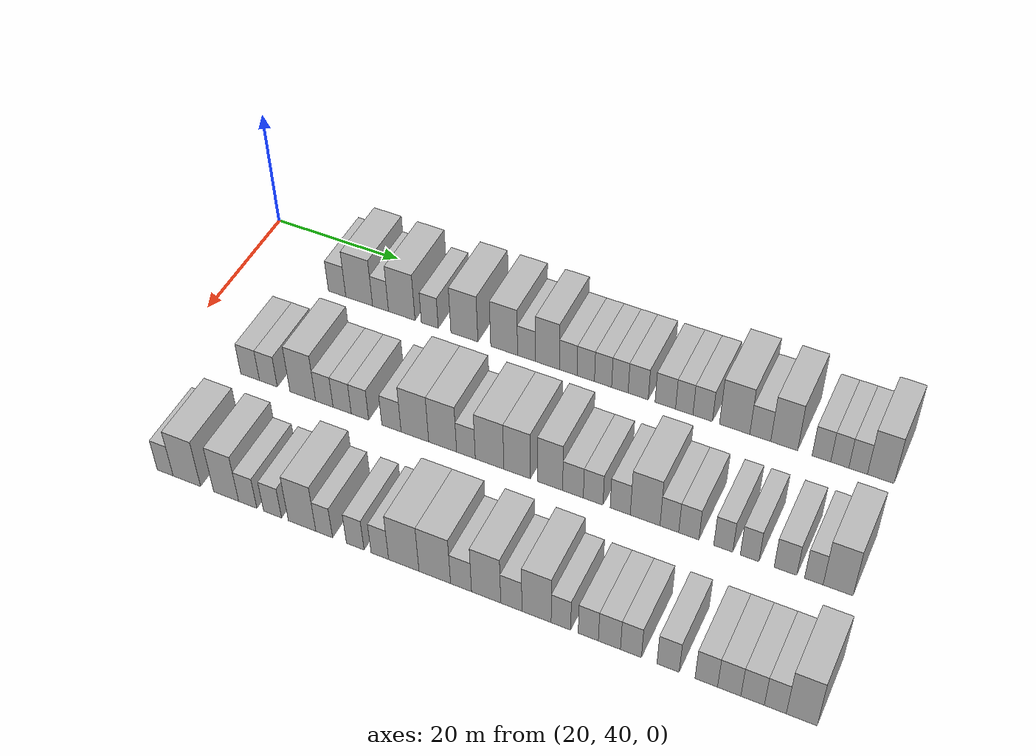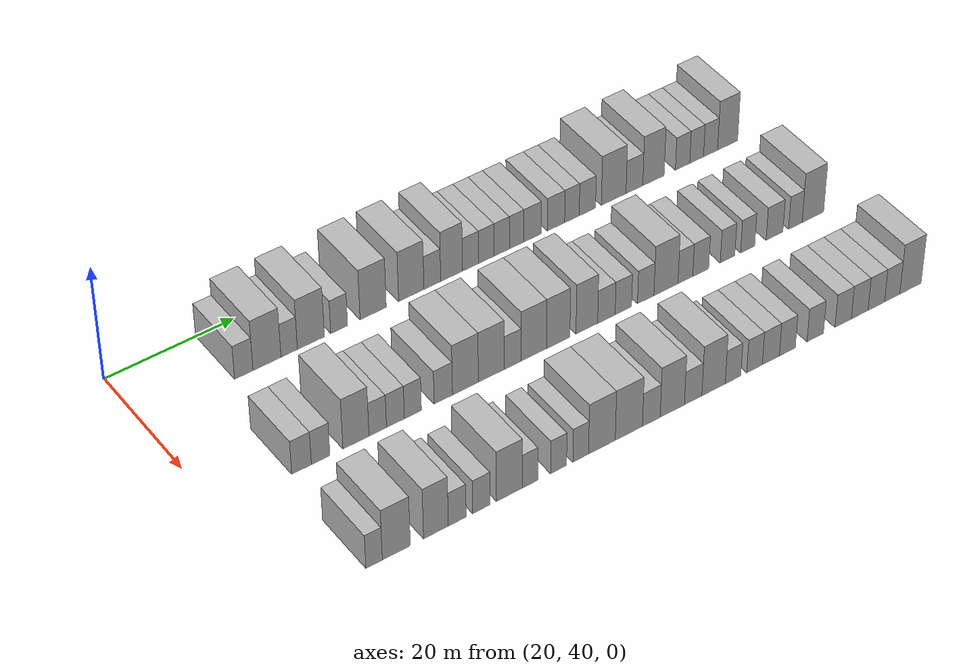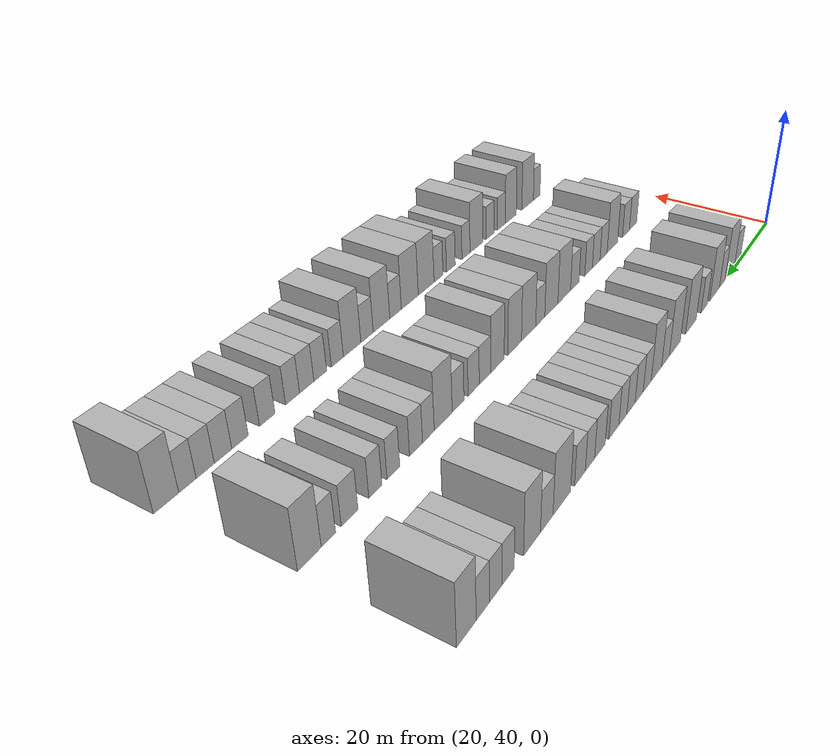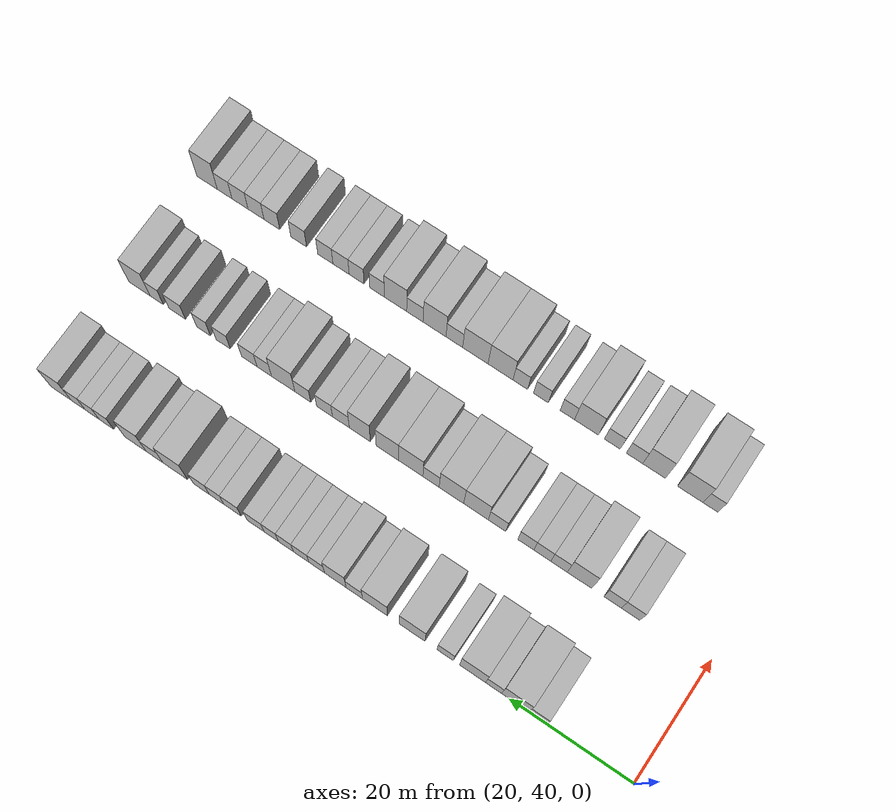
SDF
<sdf version="1.6">
 <world name="default">
  <model name="building_74">
   <static>1</static>
   <pose>25.0000 55.4740 0 0.000000 0.000000 0.000000</pose>
   <link name="link">
    <pose>0 0 3.00 0 0 0</pose>
    <collision name="collision"><geometry><box><size>10.0000 2.8598 6.0000</size></box></geometry></collision>
    <visual name="visual">
     <cast_shadows>0</cast_shadows>
     <geometry><box><size>10.0000 2.8598 6.0000</size></box></geometry>
     <material>
      <script>
       <uri>model://HANNAS_wall/materials/scripts</uri>
       <uri>model://HANNAS_wall/materials/textures</uri>
       <name>vrc/HANNAS_wall</name>
      </script>
     </material>
    </visual>
   </link>
  </model>
  <model name="building_75">
   <static>1</static>
   <pose>25.0000 59.0884 0 0.000000 0.000000 0.000000</pose>
   <link name="link">
    <pose>0 0 4.50 0 0 0</pose>
    <collision name="collision"><geometry><box><size>10.0000 4.3690 9.0000</size></box></geometry></collision>
    <visual name="visual">
     <cast_shadows>0</cast_shadows>
     <geometry><box><size>10.0000 4.3690 9.0000</size></box></geometry>
     <material>
      <script>
       <uri>model://HANNAS_wall/materials/scripts</uri>
       <uri>model://HANNAS_wall/materials/textures</uri>
       <name>vrc/HANNAS_wall</name>
      </script>
     </material>
    </visual>
   </link>
  </model>
  <model name="building_76">
   <static>1</static>
   <pose>25.0000 62.5649 0 0.000000 0.000000 0.000000</pose>
   <link name="link">
    <pose>0 0 3.00 0 0 0</pose>
    <collision name="collision"><geometry><box><size>10.0000 2.5840 6.0000</size></box></geometry></collision>
    <visual name="visual">
     <cast_shadows>0</cast_shadows>
     <geometry><box><size>10.0000 2.5840 6.0000</size></box></geometry>
     <material>
      <script>
       <uri>model://HANNAS_wall/materials/scripts</uri>
       <uri>model://HANNAS_wall/materials/textures</uri>
       <name>vrc/HANNAS_wall</name>
      </script>
     </material>
    </visual>
   </link>
  </model>
  <model name="building_77">
   <static>1</static>
   <pose>25.0000 65.9919 0 0.000000 0.000000 0.000000</pose>
   <link name="link">
    <pose>0 0 4.50 0 0 0</pose>
    <collision name="collision"><geometry><box><size>10.0000 4.2699 9.0000</size></box></geometry></collision>
    <visual name="visual">
     <cast_shadows>0</cast_shadows>
     <geometry><box><size>10.0000 4.2699 9.0000</size></box></geometry>
     <material>
      <script>
       <uri>model://HANNAS_wall/materials/scripts</uri>
       <uri>model://HANNAS_wall/materials/textures</uri>
       <name>vrc/HANNAS_wall</name>
      </script>
     </material>
    </visual>
   </link>
  </model>
  <model name="building_78">
   <static>1</static>
   <pose>25.0000 70.4706 0 0.000000 0.000000 0.000000</pose>
   <link name="link">
    <pose>0 0 3.00 0 0 0</pose>
    <collision name="collision"><geometry><box><size>10.0000 2.6875 6.0000</size></box></geometry></collision>
    <visual name="visual">
     <cast_shadows>0</cast_shadows>
     <geometry><box><size>10.0000 2.6875 6.0000</size></box></geometry>
     <material>
      <script>
       <uri>model://HANNAS_wall/materials/scripts</uri>
       <uri>model://HANNAS_wall/materials/textures</uri>
       <name>vrc/HANNAS_wall</name>
      </script>
     </material>
    </visual>
   </link>
  </model>
  <model name="building_79">
   <static>1</static>
   <pose>25.0000 75.9300 0 0.000000 0.000000 0.000000</pose>
   <link name="link">
    <pose>0 0 4.50 0 0 0</pose>
    <collision name="collision"><geometry><box><size>10.0000 4.2313 9.0000</size></box></geometry></collision>
    <visual name="visual">
     <cast_shadows>0</cast_shadows>
     <geometry><box><size>10.0000 4.2313 9.0000</size></box></geometry>
     <material>
      <script>
       <uri>model://HANNAS_wall/materials/scripts</uri>
       <uri>model://HANNAS_wall/materials/textures</uri>
       <name>vrc/HANNAS_wall</name>
      </script>
     </material>
    </visual>
   </link>
  </model>
  <model name="building_80">
   <static>1</static>
   <pose>25.0000 82.1156 0 0.000000 0.000000 0.000000</pose>
   <link name="link">
    <pose>0 0 4.50 0 0 0</pose>
    <collision name="collision"><geometry><box><size>10.0000 4.1399 9.0000</size></box></geometry></collision>
    <visual name="visual">
     <cast_shadows>0</cast_shadows>
     <geometry><box><size>10.0000 4.1399 9.0000</size></box></geometry>
     <material>
      <script>
       <uri>model://HANNAS_wall/materials/scripts</uri>
       <uri>model://HANNAS_wall/materials/textures</uri>
       <name>vrc/HANNAS_wall</name>
      </script>
     </material>
    </visual>
   </link>
  </model>
  <model name="building_81">
   <static>1</static>
   <pose>25.0000 85.5630 0 0.000000 0.000000 0.000000</pose>
   <link name="link">
    <pose>0 0 3.00 0 0 0</pose>
    <collision name="collision"><geometry><box><size>10.0000 2.7549 6.0000</size></box></geometry></collision>
    <visual name="visual">
     <cast_shadows>0</cast_shadows>
     <geometry><box><size>10.0000 2.7549 6.0000</size></box></geometry>
     <material>
      <script>
       <uri>model://HANNAS_wall/materials/scripts</uri>
       <uri>model://HANNAS_wall/materials/textures</uri>
       <name>vrc/HANNAS_wall</name>
      </script>
     </material>
    </visual>
   </link>
  </model>
  <model name="building_82">
   <static>1</static>
   <pose>25.0000 88.7493 0 0.000000 0.000000 0.000000</pose>
   <link name="link">
    <pose>0 0 4.50 0 0 0</pose>
    <collision name="collision"><geometry><box><size>10.0000 3.6176 9.0000</size></box></geometry></collision>
    <visual name="visual">
     <cast_shadows>0</cast_shadows>
     <geometry><box><size>10.0000 3.6176 9.0000</size></box></geometry>
     <material>
      <script>
       <uri>model://HANNAS_wall/materials/scripts</uri>
       <uri>model://HANNAS_wall/materials/textures</uri>
       <name>vrc/HANNAS_wall</name>
      </script>
     </material>
    </visual>
   </link>
  </model>
  <model name="building_83">
   <static>1</static>
   <pose>25.0000 91.8933 0 0.000000 0.000000 0.000000</pose>
   <link name="link">
    <pose>0 0 3.00 0 0 0</pose>
    <collision name="collision"><geometry><box><size>10.0000 2.6706 6.0000</size></box></geometry></collision>
    <visual name="visual">
     <cast_shadows>0</cast_shadows>
     <geometry><box><size>10.0000 2.6706 6.0000</size></box></geometry>
     <material>
      <script>
       <uri>model://HANNAS_wall/materials/scripts</uri>
       <uri>model://HANNAS_wall/materials/textures</uri>
       <name>vrc/HANNAS_wall</name>
      </script>
     </material>
    </visual>
   </link>
  </model>
  <model name="building_84">
   <static>1</static>
   <pose>25.0000 94.5356 0 0.000000 0.000000 0.000000</pose>
   <link name="link">
    <pose>0 0 3.00 0 0 0</pose>
    <collision name="collision"><geometry><box><size>10.0000 2.6140 6.0000</size></box></geometry></collision>
    <visual name="visual">
     <cast_shadows>0</cast_shadows>
     <geometry><box><size>10.0000 2.6140 6.0000</size></box></geometry>
     <material>
      <script>
       <uri>model://HANNAS_wall/materials/scripts</uri>
       <uri>model://HANNAS_wall/materials/textures</uri>
       <name>vrc/HANNAS_wall</name>
      </script>
     </material>
    </visual>
   </link>
  </model>
  <model name="building_85">
   <static>1</static>
   <pose>25.0000 97.1192 0 0.000000 0.000000 0.000000</pose>
   <link name="link">
    <pose>0 0 3.00 0 0 0</pose>
    <collision name="collision"><geometry><box><size>10.0000 2.5532 6.0000</size></box></geometry></collision>
    <visual name="visual">
     <cast_shadows>0</cast_shadows>
     <geometry><box><size>10.0000 2.5532 6.0000</size></box></geometry>
     <material>
      <script>
       <uri>model://HANNAS_wall/materials/scripts</uri>
       <uri>model://HANNAS_wall/materials/textures</uri>
       <name>vrc/HANNAS_wall</name>
      </script>
     </material>
    </visual>
   </link>
  </model>
  <model name="building_86">
   <static>1</static>
   <pose>25.0000 99.6179 0 0.000000 0.000000 0.000000</pose>
   <link name="link">
    <pose>0 0 3.00 0 0 0</pose>
    <collision name="collision"><geometry><box><size>10.0000 2.4443 6.0000</size></box></geometry></collision>
    <visual name="visual">
     <cast_shadows>0</cast_shadows>
     <geometry><box><size>10.0000 2.4443 6.0000</size></box></geometry>
     <material>
      <script>
       <uri>model://HANNAS_wall/materials/scripts</uri>
       <uri>model://HANNAS_wall/materials/textures</uri>
       <name>vrc/HANNAS_wall</name>
      </script>
     </material>
    </visual>
   </link>
  </model>
  <model name="building_87">
   <static>1</static>
   <pose>25.0000 102.3204 0 0.000000 0.000000 0.000000</pose>
   <link name="link">
    <pose>0 0 3.00 0 0 0</pose>
    <collision name="collision"><geometry><box><size>10.0000 2.9606 6.0000</size></box></geometry></collision>
    <visual name="visual">
     <cast_shadows>0</cast_shadows>
     <geometry><box><size>10.0000 2.9606 6.0000</size></box></geometry>
     <material>
      <script>
       <uri>model://HANNAS_wall/materials/scripts</uri>
       <uri>model://HANNAS_wall/materials/textures</uri>
       <name>vrc/HANNAS_wall</name>
      </script>
     </material>
    </visual>
   </link>
  </model>
  <model name="building_88">
   <static>1</static>
   <pose>25.0000 106.2878 0 0.000000 0.000000 0.000000</pose>
   <link name="link">
    <pose>0 0 3.00 0 0 0</pose>
    <collision name="collision"><geometry><box><size>10.0000 2.9742 6.0000</size></box></geometry></collision>
    <visual name="visual">
     <cast_shadows>0</cast_shadows>
     <geometry><box><size>10.0000 2.9742 6.0000</size></box></geometry>
     <material>
      <script>
       <uri>model://HANNAS_wall/materials/scripts</uri>
       <uri>model://HANNAS_wall/materials/textures</uri>
       <name>vrc/HANNAS_wall</name>
      </script>
     </material>
    </visual>
   </link>
  </model>
  <model name="building_89">
   <static>1</static>
   <pose>25.0000 109.0299 0 0.000000 0.000000 0.000000</pose>
   <link name="link">
    <pose>0 0 3.00 0 0 0</pose>
    <collision name="collision"><geometry><box><size>10.0000 2.5099 6.0000</size></box></geometry></collision>
    <visual name="visual">
     <cast_shadows>0</cast_shadows>
     <geometry><box><size>10.0000 2.5099 6.0000</size></box></geometry>
     <material>
      <script>
       <uri>model://HANNAS_wall/materials/scripts</uri>
       <uri>model://HANNAS_wall/materials/textures</uri>
       <name>vrc/HANNAS_wall</name>
      </script>
     </material>
    </visual>
   </link>
  </model>
  <model name="building_90">
   <static>1</static>
   <pose>25.0000 111.6919 0 0.000000 0.000000 0.000000</pose>
   <link name="link">
    <pose>0 0 3.00 0 0 0</pose>
    <collision name="collision"><geometry><box><size>10.0000 2.8143 6.0000</size></box></geometry></collision>
    <visual name="visual">
     <cast_shadows>0</cast_shadows>
     <geometry><box><size>10.0000 2.8143 6.0000</size></box></geometry>
     <material>
      <script>
       <uri>model://HANNAS_wall/materials/scripts</uri>
       <uri>model://HANNAS_wall/materials/textures</uri>
       <name>vrc/HANNAS_wall</name>
      </script>
     </material>
    </visual>
   </link>
  </model>
  <model name="building_91">
   <static>1</static>
   <pose>25.0000 116.2485 0 0.000000 0.000000 0.000000</pose>
   <link name="link">
    <pose>0 0 4.50 0 0 0</pose>
    <collision name="collision"><geometry><box><size>10.0000 4.2989 9.0000</size></box></geometry></collision>
    <visual name="visual">
     <cast_shadows>0</cast_shadows>
     <geometry><box><size>10.0000 4.2989 9.0000</size></box></geometry>
     <material>
      <script>
       <uri>model://HANNAS_wall/materials/scripts</uri>
       <uri>model://HANNAS_wall/materials/textures</uri>
       <name>vrc/HANNAS_wall</name>
      </script>
     </material>
    </visual>
   </link>
  </model>
  <model name="building_92">
   <static>1</static>
   <pose>25.0000 119.8705 0 0.000000 0.000000 0.000000</pose>
   <link name="link">
    <pose>0 0 3.00 0 0 0</pose>
    <collision name="collision"><geometry><box><size>10.0000 2.9450 6.0000</size></box></geometry></collision>
    <visual name="visual">
     <cast_shadows>0</cast_shadows>
     <geometry><box><size>10.0000 2.9450 6.0000</size></box></geometry>
     <material>
      <script>
       <uri>model://HANNAS_wall/materials/scripts</uri>
       <uri>model://HANNAS_wall/materials/textures</uri>
       <name>vrc/HANNAS_wall</name>
      </script>
     </material>
    </visual>
   </link>
  </model>
  <model name="building_93">
   <static>1</static>
   <pose>25.0000 123.2253 0 0.000000 0.000000 0.000000</pose>
   <link name="link">
    <pose>0 0 4.50 0 0 0</pose>
    <collision name="collision"><geometry><box><size>10.0000 3.7645 9.0000</size></box></geometry></collision>
    <visual name="visual">
     <cast_shadows>0</cast_shadows>
     <geometry><box><size>10.0000 3.7645 9.0000</size></box></geometry>
     <material>
      <script>
       <uri>model://HANNAS_wall/materials/scripts</uri>
       <uri>model://HANNAS_wall/materials/textures</uri>
       <name>vrc/HANNAS_wall</name>
      </script>
     </material>
    </visual>
   </link>
  </model>
  <model name="building_94">
   <static>1</static>
   <pose>25.0000 128.3895 0 0.000000 0.000000 0.000000</pose>
   <link name="link">
    <pose>0 0 3.00 0 0 0</pose>
    <collision name="collision"><geometry><box><size>10.0000 2.5640 6.0000</size></box></geometry></collision>
    <visual name="visual">
     <cast_shadows>0</cast_shadows>
     <geometry><box><size>10.0000 2.5640 6.0000</size></box></geometry>
     <material>
      <script>
       <uri>model://HANNAS_wall/materials/scripts</uri>
       <uri>model://HANNAS_wall/materials/textures</uri>
       <name>vrc/HANNAS_wall</name>
      </script>
     </material>
    </visual>
   </link>
  </model>
  <model name="building_95">
   <static>1</static>
   <pose>25.0000 130.9054 0 0.000000 0.000000 0.000000</pose>
   <link name="link">
    <pose>0 0 3.00 0 0 0</pose>
    <collision name="collision"><geometry><box><size>10.0000 2.4679 6.0000</size></box></geometry></collision>
    <visual name="visual">
     <cast_shadows>0</cast_shadows>
     <geometry><box><size>10.0000 2.4679 6.0000</size></box></geometry>
     <material>
      <script>
       <uri>model://HANNAS_wall/materials/scripts</uri>
       <uri>model://HANNAS_wall/materials/textures</uri>
       <name>vrc/HANNAS_wall</name>
      </script>
     </material>
    </visual>
   </link>
  </model>
  <model name="building_96">
   <static>1</static>
   <pose>25.0000 133.4036 0 0.000000 0.000000 0.000000</pose>
   <link name="link">
    <pose>0 0 3.00 0 0 0</pose>
    <collision name="collision"><geometry><box><size>10.0000 2.5285 6.0000</size></box></geometry></collision>
    <visual name="visual">
     <cast_shadows>0</cast_shadows>
     <geometry><box><size>10.0000 2.5285 6.0000</size></box></geometry>
     <material>
      <script>
       <uri>model://HANNAS_wall/materials/scripts</uri>
       <uri>model://HANNAS_wall/materials/textures</uri>
       <name>vrc/HANNAS_wall</name>
      </script>
     </material>
    </visual>
   </link>
  </model>
  <model name="building_97">
   <static>1</static>
   <pose>25.0000 136.4704 0 0.000000 0.000000 0.000000</pose>
   <link name="link">
    <pose>0 0 4.50 0 0 0</pose>
    <collision name="collision"><geometry><box><size>10.0000 3.6051 9.0000</size></box></geometry></collision>
    <visual name="visual">
     <cast_shadows>0</cast_shadows>
     <geometry><box><size>10.0000 3.6051 9.0000</size></box></geometry>
     <material>
      <script>
       <uri>model://HANNAS_wall/materials/scripts</uri>
       <uri>model://HANNAS_wall/materials/textures</uri>
       <name>vrc/HANNAS_wall</name>
      </script>
     </material>
    </visual>
   </link>
  </model>
  <model name="building_199">
   <static>1</static>
   <pose>44.0000 52.4858 0 0.000000 0.000000 0.000000</pose>
   <link name="link">
    <pose>0 0 3.00 0 0 0</pose>
    <collision name="collision"><geometry><box><size>10.0000 2.9919 6.0000</size></box></geometry></collision>
    <visual name="visual">
     <cast_shadows>0</cast_shadows>
     <geometry><box><size>10.0000 2.9919 6.0000</size></box></geometry>
     <material>
      <script>
       <uri>model://HANNAS_wall/materials/scripts</uri>
       <uri>model://HANNAS_wall/materials/textures</uri>
       <name>vrc/HANNAS_wall</name>
      </script>
     </material>
    </visual>
   </link>
  </model>
  <model name="building_200">
   <static>1</static>
   <pose>44.0000 55.3976 0 0.000000 0.000000 0.000000</pose>
   <link name="link">
    <pose>0 0 3.00 0 0 0</pose>
    <collision name="collision"><geometry><box><size>10.0000 2.8318 6.0000</size></box></geometry></collision>
    <visual name="visual">
     <cast_shadows>0</cast_shadows>
     <geometry><box><size>10.0000 2.8318 6.0000</size></box></geometry>
     <material>
      <script>
       <uri>model://HANNAS_wall/materials/scripts</uri>
       <uri>model://HANNAS_wall/materials/textures</uri>
       <name>vrc/HANNAS_wall</name>
      </script>
     </material>
    </visual>
   </link>
  </model>
  <model name="building_201">
   <static>1</static>
   <pose>44.0000 60.8231 0 0.000000 0.000000 0.000000</pose>
   <link name="link">
    <pose>0 0 4.50 0 0 0</pose>
    <collision name="collision"><geometry><box><size>10.0000 4.0193 9.0000</size></box></geometry></collision>
    <visual name="visual">
     <cast_shadows>0</cast_shadows>
     <geometry><box><size>10.0000 4.0193 9.0000</size></box></geometry>
     <material>
      <script>
       <uri>model://HANNAS_wall/materials/scripts</uri>
       <uri>model://HANNAS_wall/materials/textures</uri>
       <name>vrc/HANNAS_wall</name>
      </script>
     </material>
    </visual>
   </link>
  </model>
  <model name="building_202">
   <static>1</static>
   <pose>44.0000 64.1893 0 0.000000 0.000000 0.000000</pose>
   <link name="link">
    <pose>0 0 3.00 0 0 0</pose>
    <collision name="collision"><geometry><box><size>10.0000 2.7131 6.0000</size></box></geometry></collision>
    <visual name="visual">
     <cast_shadows>0</cast_shadows>
     <geometry><box><size>10.0000 2.7131 6.0000</size></box></geometry>
     <material>
      <script>
       <uri>model://HANNAS_wall/materials/scripts</uri>
       <uri>model://HANNAS_wall/materials/textures</uri>
       <name>vrc/HANNAS_wall</name>
      </script>
     </material>
    </visual>
   </link>
  </model>
  <model name="building_203">
   <static>1</static>
   <pose>44.0000 66.9496 0 0.000000 0.000000 0.000000</pose>
   <link name="link">
    <pose>0 0 3.00 0 0 0</pose>
    <collision name="collision"><geometry><box><size>10.0000 2.8075 6.0000</size></box></geometry></collision>
    <visual name="visual">
     <cast_shadows>0</cast_shadows>
     <geometry><box><size>10.0000 2.8075 6.0000</size></box></geometry>
     <material>
      <script>
       <uri>model://HANNAS_wall/materials/scripts</uri>
       <uri>model://HANNAS_wall/materials/textures</uri>
       <name>vrc/HANNAS_wall</name>
      </script>
     </material>
    </visual>
   </link>
  </model>
  <model name="building_204">
   <static>1</static>
   <pose>44.0000 69.6875 0 0.000000 0.000000 0.000000</pose>
   <link name="link">
    <pose>0 0 3.00 0 0 0</pose>
    <collision name="collision"><geometry><box><size>10.0000 2.6684 6.0000</size></box></geometry></collision>
    <visual name="visual">
     <cast_shadows>0</cast_shadows>
     <geometry><box><size>10.0000 2.6684 6.0000</size></box></geometry>
     <material>
      <script>
       <uri>model://HANNAS_wall/materials/scripts</uri>
       <uri>model://HANNAS_wall/materials/textures</uri>
       <name>vrc/HANNAS_wall</name>
      </script>
     </material>
    </visual>
   </link>
  </model>
  <model name="building_205">
   <static>1</static>
   <pose>44.0000 74.4806 0 0.000000 0.000000 0.000000</pose>
   <link name="link">
    <pose>0 0 3.00 0 0 0</pose>
    <collision name="collision"><geometry><box><size>10.0000 2.9177 6.0000</size></box></geometry></collision>
    <visual name="visual">
     <cast_shadows>0</cast_shadows>
     <geometry><box><size>10.0000 2.9177 6.0000</size></box></geometry>
     <material>
      <script>
       <uri>model://HANNAS_wall/materials/scripts</uri>
       <uri>model://HANNAS_wall/materials/textures</uri>
       <name>vrc/HANNAS_wall</name>
      </script>
     </material>
    </visual>
   </link>
  </model>
  <model name="building_206">
   <static>1</static>
   <pose>44.0000 78.0113 0 0.000000 0.000000 0.000000</pose>
   <link name="link">
    <pose>0 0 4.50 0 0 0</pose>
    <collision name="collision"><geometry><box><size>10.0000 4.1437 9.0000</size></box></geometry></collision>
    <visual name="visual">
     <cast_shadows>0</cast_shadows>
     <geometry><box><size>10.0000 4.1437 9.0000</size></box></geometry>
     <material>
      <script>
       <uri>model://HANNAS_wall/materials/scripts</uri>
       <uri>model://HANNAS_wall/materials/textures</uri>
       <name>vrc/HANNAS_wall</name>
      </script>
     </material>
    </visual>
   </link>
  </model>
  <model name="building_207">
   <static>1</static>
   <pose>44.0000 82.1556 0 0.000000 0.000000 0.000000</pose>
   <link name="link">
    <pose>0 0 4.50 0 0 0</pose>
    <collision name="collision"><geometry><box><size>10.0000 4.1450 9.0000</size></box></geometry></collision>
    <visual name="visual">
     <cast_shadows>0</cast_shadows>
     <geometry><box><size>10.0000 4.1450 9.0000</size></box></geometry>
     <material>
      <script>
       <uri>model://HANNAS_wall/materials/scripts</uri>
       <uri>model://HANNAS_wall/materials/textures</uri>
       <name>vrc/HANNAS_wall</name>
      </script>
     </material>
    </visual>
   </link>
  </model>
  <model name="building_208">
   <static>1</static>
   <pose>44.0000 85.5999 0 0.000000 0.000000 0.000000</pose>
   <link name="link">
    <pose>0 0 3.00 0 0 0</pose>
    <collision name="collision"><geometry><box><size>10.0000 2.7435 6.0000</size></box></geometry></collision>
    <visual name="visual">
     <cast_shadows>0</cast_shadows>
     <geometry><box><size>10.0000 2.7435 6.0000</size></box></geometry>
     <material>
      <script>
       <uri>model://HANNAS_wall/materials/scripts</uri>
       <uri>model://HANNAS_wall/materials/textures</uri>
       <name>vrc/HANNAS_wall</name>
      </script>
     </material>
    </visual>
   </link>
  </model>
  <model name="building_209">
   <static>1</static>
   <pose>44.0000 89.0568 0 0.000000 0.000000 0.000000</pose>
   <link name="link">
    <pose>0 0 4.50 0 0 0</pose>
    <collision name="collision"><geometry><box><size>10.0000 4.1704 9.0000</size></box></geometry></collision>
    <visual name="visual">
     <cast_shadows>0</cast_shadows>
     <geometry><box><size>10.0000 4.1704 9.0000</size></box></geometry>
     <material>
      <script>
       <uri>model://HANNAS_wall/materials/scripts</uri>
       <uri>model://HANNAS_wall/materials/textures</uri>
       <name>vrc/HANNAS_wall</name>
      </script>
     </material>
    </visual>
   </link>
  </model>
  <model name="building_210">
   <static>1</static>
   <pose>44.0000 93.0528 0 0.000000 0.000000 0.000000</pose>
   <link name="link">
    <pose>0 0 4.50 0 0 0</pose>
    <collision name="collision"><geometry><box><size>10.0000 3.8215 9.0000</size></box></geometry></collision>
    <visual name="visual">
     <cast_shadows>0</cast_shadows>
     <geometry><box><size>10.0000 3.8215 9.0000</size></box></geometry>
     <material>
      <script>
       <uri>model://HANNAS_wall/materials/scripts</uri>
       <uri>model://HANNAS_wall/materials/textures</uri>
       <name>vrc/HANNAS_wall</name>
      </script>
     </material>
    </visual>
   </link>
  </model>
  <model name="building_211">
   <static>1</static>
   <pose>44.0000 97.7664 0 0.000000 0.000000 0.000000</pose>
   <link name="link">
    <pose>0 0 4.50 0 0 0</pose>
    <collision name="collision"><geometry><box><size>10.0000 3.6059 9.0000</size></box></geometry></collision>
    <visual name="visual">
     <cast_shadows>0</cast_shadows>
     <geometry><box><size>10.0000 3.6059 9.0000</size></box></geometry>
     <material>
      <script>
       <uri>model://HANNAS_wall/materials/scripts</uri>
       <uri>model://HANNAS_wall/materials/textures</uri>
       <name>vrc/HANNAS_wall</name>
      </script>
     </material>
    </visual>
   </link>
  </model>
  <model name="building_212">
   <static>1</static>
   <pose>44.0000 101.0314 0 0.000000 0.000000 0.000000</pose>
   <link name="link">
    <pose>0 0 3.00 0 0 0</pose>
    <collision name="collision"><geometry><box><size>10.0000 2.9241 6.0000</size></box></geometry></collision>
    <visual name="visual">
     <cast_shadows>0</cast_shadows>
     <geometry><box><size>10.0000 2.9241 6.0000</size></box></geometry>
     <material>
      <script>
       <uri>model://HANNAS_wall/materials/scripts</uri>
       <uri>model://HANNAS_wall/materials/textures</uri>
       <name>vrc/HANNAS_wall</name>
      </script>
     </material>
    </visual>
   </link>
  </model>
  <model name="building_213">
   <static>1</static>
   <pose>44.0000 103.8735 0 0.000000 0.000000 0.000000</pose>
   <link name="link">
    <pose>0 0 3.00 0 0 0</pose>
    <collision name="collision"><geometry><box><size>10.0000 2.7602 6.0000</size></box></geometry></collision>
    <visual name="visual">
     <cast_shadows>0</cast_shadows>
     <geometry><box><size>10.0000 2.7602 6.0000</size></box></geometry>
     <material>
      <script>
       <uri>model://HANNAS_wall/materials/scripts</uri>
       <uri>model://HANNAS_wall/materials/textures</uri>
       <name>vrc/HANNAS_wall</name>
      </script>
     </material>
    </visual>
   </link>
  </model>
  <model name="building_214">
   <static>1</static>
   <pose>44.0000 107.6465 0 0.000000 0.000000 0.000000</pose>
   <link name="link">
    <pose>0 0 3.00 0 0 0</pose>
    <collision name="collision"><geometry><box><size>10.0000 2.7858 6.0000</size></box></geometry></collision>
    <visual name="visual">
     <cast_shadows>0</cast_shadows>
     <geometry><box><size>10.0000 2.7858 6.0000</size></box></geometry>
     <material>
      <script>
       <uri>model://HANNAS_wall/materials/scripts</uri>
       <uri>model://HANNAS_wall/materials/textures</uri>
       <name>vrc/HANNAS_wall</name>
      </script>
     </material>
    </visual>
   </link>
  </model>
  <model name="building_215">
   <static>1</static>
   <pose>44.0000 111.0881 0 0.000000 0.000000 0.000000</pose>
   <link name="link">
    <pose>0 0 4.50 0 0 0</pose>
    <collision name="collision"><geometry><box><size>10.0000 4.0975 9.0000</size></box></geometry></collision>
    <visual name="visual">
     <cast_shadows>0</cast_shadows>
     <geometry><box><size>10.0000 4.0975 9.0000</size></box></geometry>
     <material>
      <script>
       <uri>model://HANNAS_wall/materials/scripts</uri>
       <uri>model://HANNAS_wall/materials/textures</uri>
       <name>vrc/HANNAS_wall</name>
      </script>
     </material>
    </visual>
   </link>
  </model>
  <model name="building_216">
   <static>1</static>
   <pose>44.0000 114.4118 0 0.000000 0.000000 0.000000</pose>
   <link name="link">
    <pose>0 0 3.00 0 0 0</pose>
    <collision name="collision"><geometry><box><size>10.0000 2.5498 6.0000</size></box></geometry></collision>
    <visual name="visual">
     <cast_shadows>0</cast_shadows>
     <geometry><box><size>10.0000 2.5498 6.0000</size></box></geometry>
     <material>
      <script>
       <uri>model://HANNAS_wall/materials/scripts</uri>
       <uri>model://HANNAS_wall/materials/textures</uri>
       <name>vrc/HANNAS_wall</name>
      </script>
     </material>
    </visual>
   </link>
  </model>
  <model name="building_217">
   <static>1</static>
   <pose>44.0000 117.0549 0 0.000000 0.000000 0.000000</pose>
   <link name="link">
    <pose>0 0 3.00 0 0 0</pose>
    <collision name="collision"><geometry><box><size>10.0000 2.7363 6.0000</size></box></geometry></collision>
    <visual name="visual">
     <cast_shadows>0</cast_shadows>
     <geometry><box><size>10.0000 2.7363 6.0000</size></box></geometry>
     <material>
      <script>
       <uri>model://HANNAS_wall/materials/scripts</uri>
       <uri>model://HANNAS_wall/materials/textures</uri>
       <name>vrc/HANNAS_wall</name>
      </script>
     </material>
    </visual>
   </link>
  </model>
  <model name="building_218">
   <static>1</static>
   <pose>44.0000 121.6931 0 0.000000 0.000000 0.000000</pose>
   <link name="link">
    <pose>0 0 3.00 0 0 0</pose>
    <collision name="collision"><geometry><box><size>10.0000 2.5401 6.0000</size></box></geometry></collision>
    <visual name="visual">
     <cast_shadows>0</cast_shadows>
     <geometry><box><size>10.0000 2.5401 6.0000</size></box></geometry>
     <material>
      <script>
       <uri>model://HANNAS_wall/materials/scripts</uri>
       <uri>model://HANNAS_wall/materials/textures</uri>
       <name>vrc/HANNAS_wall</name>
      </script>
     </material>
    </visual>
   </link>
  </model>
  <model name="building_219">
   <static>1</static>
   <pose>44.0000 125.2019 0 0.000000 0.000000 0.000000</pose>
   <link name="link">
    <pose>0 0 3.00 0 0 0</pose>
    <collision name="collision"><geometry><box><size>10.0000 2.4775 6.0000</size></box></geometry></collision>
    <visual name="visual">
     <cast_shadows>0</cast_shadows>
     <geometry><box><size>10.0000 2.4775 6.0000</size></box></geometry>
     <material>
      <script>
       <uri>model://HANNAS_wall/materials/scripts</uri>
       <uri>model://HANNAS_wall/materials/textures</uri>
       <name>vrc/HANNAS_wall</name>
      </script>
     </material>
    </visual>
   </link>
  </model>
  <model name="building_220">
   <static>1</static>
   <pose>44.0000 129.9270 0 0.000000 0.000000 0.000000</pose>
   <link name="link">
    <pose>0 0 3.00 0 0 0</pose>
    <collision name="collision"><geometry><box><size>10.0000 2.9727 6.0000</size></box></geometry></collision>
    <visual name="visual">
     <cast_shadows>0</cast_shadows>
     <geometry><box><size>10.0000 2.9727 6.0000</size></box></geometry>
     <material>
      <script>
       <uri>model://HANNAS_wall/materials/scripts</uri>
       <uri>model://HANNAS_wall/materials/textures</uri>
       <name>vrc/HANNAS_wall</name>
      </script>
     </material>
    </visual>
   </link>
  </model>
  <model name="building_221">
   <static>1</static>
   <pose>44.0000 133.6176 0 0.000000 0.000000 0.000000</pose>
   <link name="link">
    <pose>0 0 3.00 0 0 0</pose>
    <collision name="collision"><geometry><box><size>10.0000 2.4084 6.0000</size></box></geometry></collision>
    <visual name="visual">
     <cast_shadows>0</cast_shadows>
     <geometry><box><size>10.0000 2.4084 6.0000</size></box></geometry>
     <material>
      <script>
       <uri>model://HANNAS_wall/materials/scripts</uri>
       <uri>model://HANNAS_wall/materials/textures</uri>
       <name>vrc/HANNAS_wall</name>
      </script>
     </material>
    </visual>
   </link>
  </model>
  <model name="building_222">
   <static>1</static>
   <pose>44.0000 136.7472 0 0.000000 0.000000 0.000000</pose>
   <link name="link">
    <pose>0 0 4.50 0 0 0</pose>
    <collision name="collision"><geometry><box><size>10.0000 3.8507 9.0000</size></box></geometry></collision>
    <visual name="visual">
     <cast_shadows>0</cast_shadows>
     <geometry><box><size>10.0000 3.8507 9.0000</size></box></geometry>
     <material>
      <script>
       <uri>model://HANNAS_wall/materials/scripts</uri>
       <uri>model://HANNAS_wall/materials/textures</uri>
       <name>vrc/HANNAS_wall</name>
      </script>
     </material>
    </visual>
   </link>
  </model>
  <model name="building_318">
   <static>1</static>
   <pose>63.0000 51.1699 0 0.000000 0.000000 0.000000</pose>
   <link name="link">
    <pose>0 0 3.00 0 0 0</pose>
    <collision name="collision"><geometry><box><size>10.0000 2.4506 6.0000</size></box></geometry></collision>
    <visual name="visual">
     <cast_shadows>0</cast_shadows>
     <geometry><box><size>10.0000 2.4506 6.0000</size></box></geometry>
     <material>
      <script>
       <uri>model://HANNAS_wall/materials/scripts</uri>
       <uri>model://HANNAS_wall/materials/textures</uri>
       <name>vrc/HANNAS_wall</name>
      </script>
     </material>
    </visual>
   </link>
  </model>
  <model name="building_319">
   <static>1</static>
   <pose>63.0000 54.4951 0 0.000000 0.000000 0.000000</pose>
   <link name="link">
    <pose>0 0 4.50 0 0 0</pose>
    <collision name="collision"><geometry><box><size>10.0000 4.1999 9.0000</size></box></geometry></collision>
    <visual name="visual">
     <cast_shadows>0</cast_shadows>
     <geometry><box><size>10.0000 4.1999 9.0000</size></box></geometry>
     <material>
      <script>
       <uri>model://HANNAS_wall/materials/scripts</uri>
       <uri>model://HANNAS_wall/materials/textures</uri>
       <name>vrc/HANNAS_wall</name>
      </script>
     </material>
    </visual>
   </link>
  </model>
  <model name="building_320">
   <static>1</static>
   <pose>63.0000 60.4772 0 0.000000 0.000000 0.000000</pose>
   <link name="link">
    <pose>0 0 4.50 0 0 0</pose>
    <collision name="collision"><geometry><box><size>10.0000 3.7643 9.0000</size></box></geometry></collision>
    <visual name="visual">
     <cast_shadows>0</cast_shadows>
     <geometry><box><size>10.0000 3.7643 9.0000</size></box></geometry>
     <material>
      <script>
       <uri>model://HANNAS_wall/materials/scripts</uri>
       <uri>model://HANNAS_wall/materials/textures</uri>
       <name>vrc/HANNAS_wall</name>
      </script>
     </material>
    </visual>
   </link>
  </model>
  <model name="building_321">
   <static>1</static>
   <pose>63.0000 63.7219 0 0.000000 0.000000 0.000000</pose>
   <link name="link">
    <pose>0 0 3.00 0 0 0</pose>
    <collision name="collision"><geometry><box><size>10.0000 2.7251 6.0000</size></box></geometry></collision>
    <visual name="visual">
     <cast_shadows>0</cast_shadows>
     <geometry><box><size>10.0000 2.7251 6.0000</size></box></geometry>
     <material>
      <script>
       <uri>model://HANNAS_wall/materials/scripts</uri>
       <uri>model://HANNAS_wall/materials/textures</uri>
       <name>vrc/HANNAS_wall</name>
      </script>
     </material>
    </visual>
   </link>
  </model>
  <model name="building_322">
   <static>1</static>
   <pose>63.0000 67.4157 0 0.000000 0.000000 0.000000</pose>
   <link name="link">
    <pose>0 0 3.00 0 0 0</pose>
    <collision name="collision"><geometry><box><size>10.0000 2.6626 6.0000</size></box></geometry></collision>
    <visual name="visual">
     <cast_shadows>0</cast_shadows>
     <geometry><box><size>10.0000 2.6626 6.0000</size></box></geometry>
     <material>
      <script>
       <uri>model://HANNAS_wall/materials/scripts</uri>
       <uri>model://HANNAS_wall/materials/textures</uri>
       <name>vrc/HANNAS_wall</name>
      </script>
     </material>
    </visual>
   </link>
  </model>
  <model name="building_323">
   <static>1</static>
   <pose>63.0000 71.7607 0 0.000000 0.000000 0.000000</pose>
   <link name="link">
    <pose>0 0 4.50 0 0 0</pose>
    <collision name="collision"><geometry><box><size>10.0000 4.0275 9.0000</size></box></geometry></collision>
    <visual name="visual">
     <cast_shadows>0</cast_shadows>
     <geometry><box><size>10.0000 4.0275 9.0000</size></box></geometry>
     <material>
      <script>
       <uri>model://HANNAS_wall/materials/scripts</uri>
       <uri>model://HANNAS_wall/materials/textures</uri>
       <name>vrc/HANNAS_wall</name>
      </script>
     </material>
    </visual>
   </link>
  </model>
  <model name="building_324">
   <static>1</static>
   <pose>63.0000 74.9885 0 0.000000 0.000000 0.000000</pose>
   <link name="link">
    <pose>0 0 3.00 0 0 0</pose>
    <collision name="collision"><geometry><box><size>10.0000 2.4280 6.0000</size></box></geometry></collision>
    <visual name="visual">
     <cast_shadows>0</cast_shadows>
     <geometry><box><size>10.0000 2.4280 6.0000</size></box></geometry>
     <material>
      <script>
       <uri>model://HANNAS_wall/materials/scripts</uri>
       <uri>model://HANNAS_wall/materials/textures</uri>
       <name>vrc/HANNAS_wall</name>
      </script>
     </material>
    </visual>
   </link>
  </model>
  <model name="building_325">
   <static>1</static>
   <pose>63.0000 79.4685 0 0.000000 0.000000 0.000000</pose>
   <link name="link">
    <pose>0 0 3.00 0 0 0</pose>
    <collision name="collision"><geometry><box><size>10.0000 2.5320 6.0000</size></box></geometry></collision>
    <visual name="visual">
     <cast_shadows>0</cast_shadows>
     <geometry><box><size>10.0000 2.5320 6.0000</size></box></geometry>
     <material>
      <script>
       <uri>model://HANNAS_wall/materials/scripts</uri>
       <uri>model://HANNAS_wall/materials/textures</uri>
       <name>vrc/HANNAS_wall</name>
      </script>
     </material>
    </visual>
   </link>
  </model>
  <model name="building_326">
   <static>1</static>
   <pose>63.0000 82.9801 0 0.000000 0.000000 0.000000</pose>
   <link name="link">
    <pose>0 0 3.00 0 0 0</pose>
    <collision name="collision"><geometry><box><size>10.0000 2.4911 6.0000</size></box></geometry></collision>
    <visual name="visual">
     <cast_shadows>0</cast_shadows>
     <geometry><box><size>10.0000 2.4911 6.0000</size></box></geometry>
     <material>
      <script>
       <uri>model://HANNAS_wall/materials/scripts</uri>
       <uri>model://HANNAS_wall/materials/textures</uri>
       <name>vrc/HANNAS_wall</name>
      </script>
     </material>
    </visual>
   </link>
  </model>
  <model name="building_327">
   <static>1</static>
   <pose>63.0000 86.3656 0 0.000000 0.000000 0.000000</pose>
   <link name="link">
    <pose>0 0 4.50 0 0 0</pose>
    <collision name="collision"><geometry><box><size>10.0000 4.2799 9.0000</size></box></geometry></collision>
    <visual name="visual">
     <cast_shadows>0</cast_shadows>
     <geometry><box><size>10.0000 4.2799 9.0000</size></box></geometry>
     <material>
      <script>
       <uri>model://HANNAS_wall/materials/scripts</uri>
       <uri>model://HANNAS_wall/materials/textures</uri>
       <name>vrc/HANNAS_wall</name>
      </script>
     </material>
    </visual>
   </link>
  </model>
  <model name="building_328">
   <static>1</static>
   <pose>63.0000 90.7015 0 0.000000 0.000000 0.000000</pose>
   <link name="link">
    <pose>0 0 4.50 0 0 0</pose>
    <collision name="collision"><geometry><box><size>10.0000 4.3919 9.0000</size></box></geometry></collision>
    <visual name="visual">
     <cast_shadows>0</cast_shadows>
     <geometry><box><size>10.0000 4.3919 9.0000</size></box></geometry>
     <material>
      <script>
       <uri>model://HANNAS_wall/materials/scripts</uri>
       <uri>model://HANNAS_wall/materials/textures</uri>
       <name>vrc/HANNAS_wall</name>
      </script>
     </material>
    </visual>
   </link>
  </model>
  <model name="building_329">
   <static>1</static>
   <pose>63.0000 94.3405 0 0.000000 0.000000 0.000000</pose>
   <link name="link">
    <pose>0 0 3.00 0 0 0</pose>
    <collision name="collision"><geometry><box><size>10.0000 2.8862 6.0000</size></box></geometry></collision>
    <visual name="visual">
     <cast_shadows>0</cast_shadows>
     <geometry><box><size>10.0000 2.8862 6.0000</size></box></geometry>
     <material>
      <script>
       <uri>model://HANNAS_wall/materials/scripts</uri>
       <uri>model://HANNAS_wall/materials/textures</uri>
       <name>vrc/HANNAS_wall</name>
      </script>
     </material>
    </visual>
   </link>
  </model>
  <model name="building_330">
   <static>1</static>
   <pose>63.0000 97.7773 0 0.000000 0.000000 0.000000</pose>
   <link name="link">
    <pose>0 0 4.50 0 0 0</pose>
    <collision name="collision"><geometry><box><size>10.0000 3.9872 9.0000</size></box></geometry></collision>
    <visual name="visual">
     <cast_shadows>0</cast_shadows>
     <geometry><box><size>10.0000 3.9872 9.0000</size></box></geometry>
     <material>
      <script>
       <uri>model://HANNAS_wall/materials/scripts</uri>
       <uri>model://HANNAS_wall/materials/textures</uri>
       <name>vrc/HANNAS_wall</name>
      </script>
     </material>
    </visual>
   </link>
  </model>
  <model name="building_331">
   <static>1</static>
   <pose>63.0000 101.2037 0 0.000000 0.000000 0.000000</pose>
   <link name="link">
    <pose>0 0 3.00 0 0 0</pose>
    <collision name="collision"><geometry><box><size>10.0000 2.8656 6.0000</size></box></geometry></collision>
    <visual name="visual">
     <cast_shadows>0</cast_shadows>
     <geometry><box><size>10.0000 2.8656 6.0000</size></box></geometry>
     <material>
      <script>
       <uri>model://HANNAS_wall/materials/scripts</uri>
       <uri>model://HANNAS_wall/materials/textures</uri>
       <name>vrc/HANNAS_wall</name>
      </script>
     </material>
    </visual>
   </link>
  </model>
  <model name="building_332">
   <static>1</static>
   <pose>63.0000 104.5900 0 0.000000 0.000000 0.000000</pose>
   <link name="link">
    <pose>0 0 4.50 0 0 0</pose>
    <collision name="collision"><geometry><box><size>10.0000 3.9071 9.0000</size></box></geometry></collision>
    <visual name="visual">
     <cast_shadows>0</cast_shadows>
     <geometry><box><size>10.0000 3.9071 9.0000</size></box></geometry>
     <material>
      <script>
       <uri>model://HANNAS_wall/materials/scripts</uri>
       <uri>model://HANNAS_wall/materials/textures</uri>
       <name>vrc/HANNAS_wall</name>
      </script>
     </material>
    </visual>
   </link>
  </model>
  <model name="building_333">
   <static>1</static>
   <pose>63.0000 107.8384 0 0.000000 0.000000 0.000000</pose>
   <link name="link">
    <pose>0 0 3.00 0 0 0</pose>
    <collision name="collision"><geometry><box><size>10.0000 2.5898 6.0000</size></box></geometry></collision>
    <visual name="visual">
     <cast_shadows>0</cast_shadows>
     <geometry><box><size>10.0000 2.5898 6.0000</size></box></geometry>
     <material>
      <script>
       <uri>model://HANNAS_wall/materials/scripts</uri>
       <uri>model://HANNAS_wall/materials/textures</uri>
       <name>vrc/HANNAS_wall</name>
      </script>
     </material>
    </visual>
   </link>
  </model>
  <model name="building_334">
   <static>1</static>
   <pose>63.0000 111.4539 0 0.000000 0.000000 0.000000</pose>
   <link name="link">
    <pose>0 0 3.00 0 0 0</pose>
    <collision name="collision"><geometry><box><size>10.0000 2.6411 6.0000</size></box></geometry></collision>
    <visual name="visual">
     <cast_shadows>0</cast_shadows>
     <geometry><box><size>10.0000 2.6411 6.0000</size></box></geometry>
     <material>
      <script>
       <uri>model://HANNAS_wall/materials/scripts</uri>
       <uri>model://HANNAS_wall/materials/textures</uri>
       <name>vrc/HANNAS_wall</name>
      </script>
     </material>
    </visual>
   </link>
  </model>
  <model name="building_335">
   <static>1</static>
   <pose>63.0000 114.2163 0 0.000000 0.000000 0.000000</pose>
   <link name="link">
    <pose>0 0 3.00 0 0 0</pose>
    <collision name="collision"><geometry><box><size>10.0000 2.8838 6.0000</size></box></geometry></collision>
    <visual name="visual">
     <cast_shadows>0</cast_shadows>
     <geometry><box><size>10.0000 2.8838 6.0000</size></box></geometry>
     <material>
      <script>
       <uri>model://HANNAS_wall/materials/scripts</uri>
       <uri>model://HANNAS_wall/materials/textures</uri>
       <name>vrc/HANNAS_wall</name>
      </script>
     </material>
    </visual>
   </link>
  </model>
  <model name="building_336">
   <static>1</static>
   <pose>63.0000 117.0141 0 0.000000 0.000000 0.000000</pose>
   <link name="link">
    <pose>0 0 3.00 0 0 0</pose>
    <collision name="collision"><geometry><box><size>10.0000 2.7117 6.0000</size></box></geometry></collision>
    <visual name="visual">
     <cast_shadows>0</cast_shadows>
     <geometry><box><size>10.0000 2.7117 6.0000</size></box></geometry>
     <material>
      <script>
       <uri>model://HANNAS_wall/materials/scripts</uri>
       <uri>model://HANNAS_wall/materials/textures</uri>
       <name>vrc/HANNAS_wall</name>
      </script>
     </material>
    </visual>
   </link>
  </model>
  <model name="building_337">
   <static>1</static>
   <pose>63.0000 121.7848 0 0.000000 0.000000 0.000000</pose>
   <link name="link">
    <pose>0 0 3.00 0 0 0</pose>
    <collision name="collision"><geometry><box><size>10.0000 2.8297 6.0000</size></box></geometry></collision>
    <visual name="visual">
     <cast_shadows>0</cast_shadows>
     <geometry><box><size>10.0000 2.8297 6.0000</size></box></geometry>
     <material>
      <script>
       <uri>model://HANNAS_wall/materials/scripts</uri>
       <uri>model://HANNAS_wall/materials/textures</uri>
       <name>vrc/HANNAS_wall</name>
      </script>
     </material>
    </visual>
   </link>
  </model>
  <model name="building_338">
   <static>1</static>
   <pose>63.0000 126.6174 0 0.000000 0.000000 0.000000</pose>
   <link name="link">
    <pose>0 0 3.00 0 0 0</pose>
    <collision name="collision"><geometry><box><size>10.0000 2.8355 6.0000</size></box></geometry></collision>
    <visual name="visual">
     <cast_shadows>0</cast_shadows>
     <geometry><box><size>10.0000 2.8355 6.0000</size></box></geometry>
     <material>
      <script>
       <uri>model://HANNAS_wall/materials/scripts</uri>
       <uri>model://HANNAS_wall/materials/textures</uri>
       <name>vrc/HANNAS_wall</name>
      </script>
     </material>
    </visual>
   </link>
  </model>
  <model name="building_339">
   <static>1</static>
   <pose>63.0000 129.4907 0 0.000000 0.000000 0.000000</pose>
   <link name="link">
    <pose>0 0 3.00 0 0 0</pose>
    <collision name="collision"><geometry><box><size>10.0000 2.9112 6.0000</size></box></geometry></collision>
    <visual name="visual">
     <cast_shadows>0</cast_shadows>
     <geometry><box><size>10.0000 2.9112 6.0000</size></box></geometry>
     <material>
      <script>
       <uri>model://HANNAS_wall/materials/scripts</uri>
       <uri>model://HANNAS_wall/materials/textures</uri>
       <name>vrc/HANNAS_wall</name>
      </script>
     </material>
    </visual>
   </link>
  </model>
  <model name="building_340">
   <static>1</static>
   <pose>63.0000 132.4017 0 0.000000 0.000000 0.000000</pose>
   <link name="link">
    <pose>0 0 3.00 0 0 0</pose>
    <collision name="collision"><geometry><box><size>10.0000 2.9108 6.0000</size></box></geometry></collision>
    <visual name="visual">
     <cast_shadows>0</cast_shadows>
     <geometry><box><size>10.0000 2.9108 6.0000</size></box></geometry>
     <material>
      <script>
       <uri>model://HANNAS_wall/materials/scripts</uri>
       <uri>model://HANNAS_wall/materials/textures</uri>
       <name>vrc/HANNAS_wall</name>
      </script>
     </material>
    </visual>
   </link>
  </model>
  <model name="building_341">
   <static>1</static>
   <pose>63.0000 135.2012 0 0.000000 0.000000 0.000000</pose>
   <link name="link">
    <pose>0 0 3.00 0 0 0</pose>
    <collision name="collision"><geometry><box><size>10.0000 2.6882 6.0000</size></box></geometry></collision>
    <visual name="visual">
     <cast_shadows>0</cast_shadows>
     <geometry><box><size>10.0000 2.6882 6.0000</size></box></geometry>
     <material>
      <script>
       <uri>model://HANNAS_wall/materials/scripts</uri>
       <uri>model://HANNAS_wall/materials/textures</uri>
       <name>vrc/HANNAS_wall</name>
      </script>
     </material>
    </visual>
   </link>
  </model>
  <model name="building_342">
   <static>1</static>
   <pose>63.0000 138.4294 0 0.000000 0.000000 0.000000</pose>
   <link name="link">
    <pose>0 0 4.50 0 0 0</pose>
    <collision name="collision"><geometry><box><size>10.0000 3.7681 9.0000</size></box></geometry></collision>
    <visual name="visual">
     <cast_shadows>0</cast_shadows>
     <geometry><box><size>10.0000 3.7681 9.0000</size></box></geometry>
     <material>
      <script>
       <uri>model://HANNAS_wall/materials/scripts</uri>
       <uri>model://HANNAS_wall/materials/textures</uri>
       <name>vrc/HANNAS_wall</name>
      </script>
     </material>
    </visual>
   </link>
  </model>
 </world>
</sdf>
